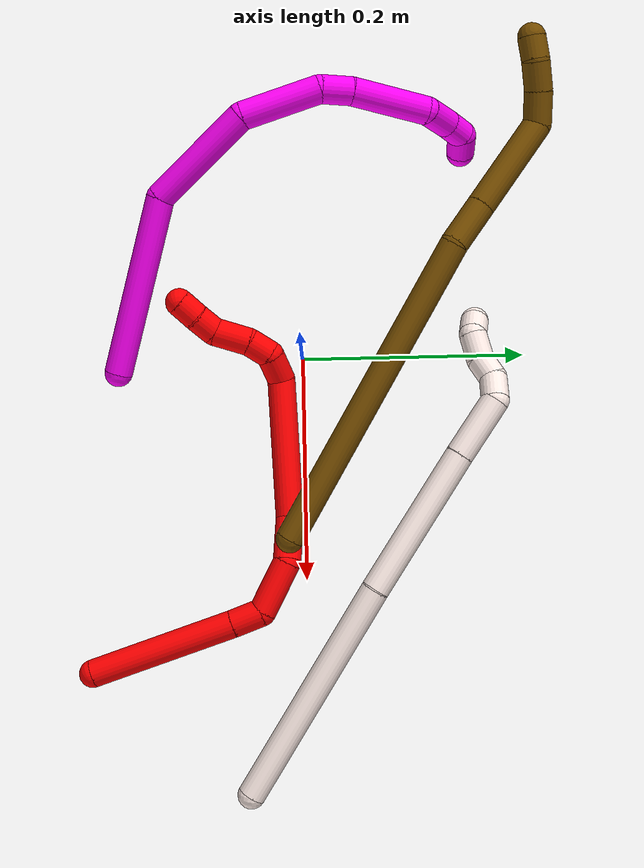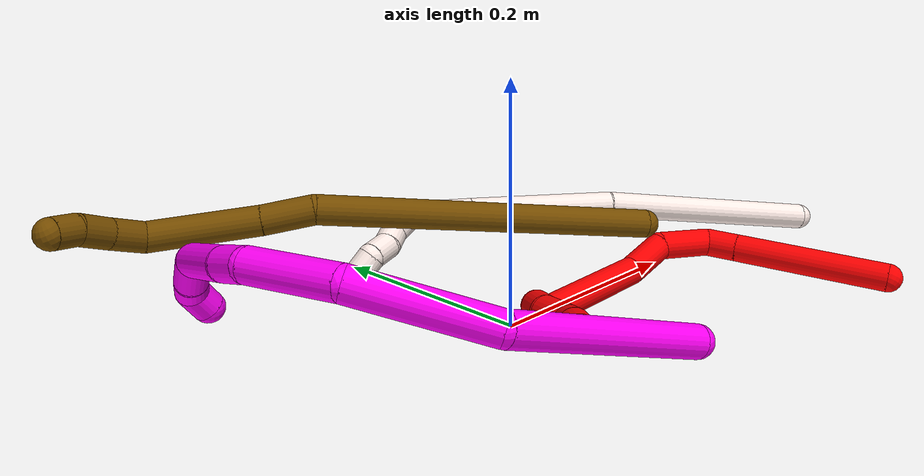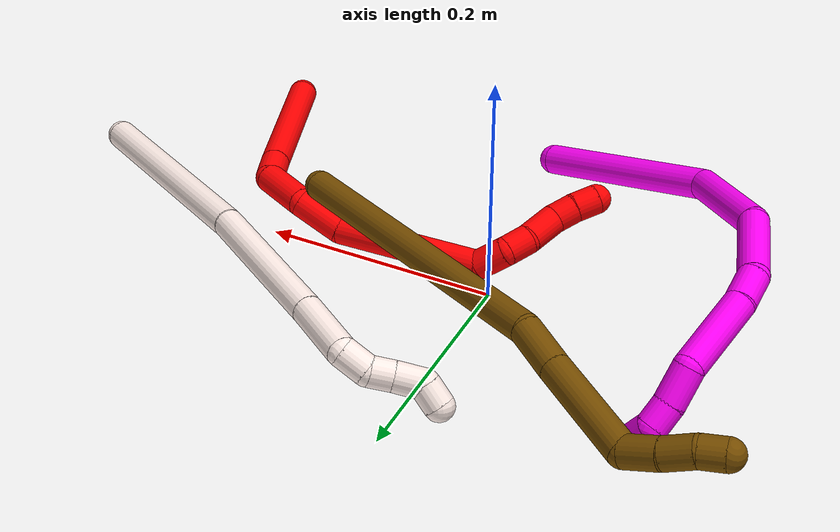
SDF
<sdf version="1.7">
 <world name="default">
  <model name="photoneo_s_sensor">
   <static>1</static>
   <pose>0 0 2 1.57079 1.57079 3.14159</pose>
   <link name="link">
    <inertial><mass>0.1</mass></inertial>
    <sensor name="sensor" type="depth">
     <update_rate>30</update_rate>
     <camera>
      <horizontal_fov>1.22</horizontal_fov>
      <image><width>1920</width><height>1200</height><format>B8G8R8</format></image>
      <clip><near>0.1</near><far>4</far></clip>
      <depth_camera><output>points</output></depth_camera>
     </camera>
     <plugin name="camera_plugin" filename="libgazebo_ros_depth_camera.so">
      <baseline>0.2</baseline>
      <alwaysOn>1</alwaysOn>
      <updateRate>0.0</updateRate>
      <cameraName>camera_ir</cameraName>
      <imageTopicName>/camera/color/image_raw</imageTopicName>
      <cameraInfoTopicName>/camera/color/camera_info</cameraInfoTopicName>
      <depthImageTopicName>/camera/depth/image_raw</depthImageTopicName>
      <depthImageCameraInfoTopicName>/camera/depth/camera_info</depthImageCameraInfoTopicName>
      <pointCloudTopicName>/camera/depth/points</pointCloudTopicName>
      <frameName>fr_optical</frameName>
      <pointCloudCutoff>0.1</pointCloudCutoff>
      <pointCloudCutoffMax>2.0</pointCloudCutoffMax>
      <distortionK1>0</distortionK1>
      <distortionK2>0</distortionK2>
      <distortionK3>0</distortionK3>
      <distortionT1>0</distortionT1>
      <distortionT2>0</distortionT2>
      <CxPrime>0</CxPrime>
      <Cx>0</Cx>
      <Cy>0</Cy>
      <focalLength>0</focalLength>
      <hackBaseline>0</hackBaseline>
     </plugin>
    </sensor>
   </link>
  </model>
  <model name="2">
   <static>0</static>
   <link name="2">
    <collision name="collision-cylinder-e_1_1_4">
     <pose>-0.022279 0.062234 -0.007847 -1.69622 -0.341283 0.385955</pose>
     <geometry><cylinder><radius>0.0125</radius><length>0.133131</length></cylinder></geometry>
     <surface>
      <friction><ode><mu>1.16</mu><mu2>1.16</mu2><slip1>0</slip1><slip2>0</slip2></ode></friction>
      <contact><ode><kp>1e+06</kp><kd>1</kd><max_vel>0</max_vel><min_depth>0.001</min_depth></ode></contact>
     </surface>
    </collision>
    <visual name="visual-cylinder-e_1_1_4">
     <pose>-0.022279 0.062234 -0.007847 -1.69622 -0.341283 0.385955</pose>
     <geometry><cylinder><radius>0.0125</radius><length>0.133131</length></cylinder></geometry>
     <material><ambient>1 0 0 1</ambient></material>
    </visual>
    <collision name="collision-cylinder-e_2_4_5">
     <pose>-0.049681 0.137267 -0.017551 -1.71484 -0.377097 0.434033</pose>
     <geometry><cylinder><radius>0.0125</radius><length>0.027822</length></cylinder></geometry>
     <surface>
      <friction><ode><mu>1.16</mu><mu2>1.16</mu2><slip1>0</slip1><slip2>0</slip2></ode></friction>
      <contact><ode><kp>1e+06</kp><kd>1</kd><max_vel>0</max_vel><min_depth>0.001</min_depth></ode></contact>
     </surface>
    </collision>
    <visual name="visual-cylinder-e_2_4_5">
     <pose>-0.049681 0.137267 -0.017551 -1.71484 -0.377097 0.434033</pose>
     <geometry><cylinder><radius>0.0125</radius><length>0.027822</length></cylinder></geometry>
     <material><ambient>1 0 0 1</ambient></material>
    </visual>
    <collision name="collision-cylinder-e_3_5_6">
     <pose>-0.072963 0.161054 -0.032307 -2.43611 -0.820016 1.7361</pose>
     <geometry><cylinder><radius>0.0125</radius><length>0.049675</length></cylinder></geometry>
     <surface>
      <friction><ode><mu>1.16</mu><mu2>1.16</mu2><slip1>0</slip1><slip2>0</slip2></ode></friction>
      <contact><ode><kp>1e+06</kp><kd>1</kd><max_vel>0</max_vel><min_depth>0.001</min_depth></ode></contact>
     </surface>
    </collision>
    <visual name="visual-cylinder-e_3_5_6">
     <pose>-0.072963 0.161054 -0.032307 -2.43611 -0.820016 1.7361</pose>
     <geometry><cylinder><radius>0.0125</radius><length>0.049675</length></cylinder></geometry>
     <material><ambient>1 0 0 1</ambient></material>
    </visual>
    <collision name="collision-cylinder-e_4_6_7">
     <pose>-0.101599 0.173568 -0.063053 -3.05622 -0.52922 2.8289</pose>
     <geometry><cylinder><radius>0.0125</radius><length>0.041501</length></cylinder></geometry>
     <surface>
      <friction><ode><mu>1.16</mu><mu2>1.16</mu2><slip1>0</slip1><slip2>0</slip2></ode></friction>
      <contact><ode><kp>1e+06</kp><kd>1</kd><max_vel>0</max_vel><min_depth>0.001</min_depth></ode></contact>
     </surface>
    </collision>
    <visual name="visual-cylinder-e_4_6_7">
     <pose>-0.101599 0.173568 -0.063053 -3.05622 -0.52922 2.8289</pose>
     <geometry><cylinder><radius>0.0125</radius><length>0.041501</length></cylinder></geometry>
     <material><ambient>1 0 0 1</ambient></material>
    </visual>
    <collision name="collision-cylinder-e_5_7_8">
     <pose>-0.160025 0.171353 -0.121111 3.0488 -0.870828 -2.94265</pose>
     <geometry><cylinder><radius>0.0125</radius><length>0.125382</length></cylinder></geometry>
     <surface>
      <friction><ode><mu>1.16</mu><mu2>1.16</mu2><slip1>0</slip1><slip2>0</slip2></ode></friction>
      <contact><ode><kp>1e+06</kp><kd>1</kd><max_vel>0</max_vel><min_depth>0.001</min_depth></ode></contact>
     </surface>
    </collision>
    <visual name="visual-cylinder-e_5_7_8">
     <pose>-0.160025 0.171353 -0.121111 3.0488 -0.870828 -2.94265</pose>
     <geometry><cylinder><radius>0.0125</radius><length>0.125382</length></cylinder></geometry>
     <material><ambient>1 0 0 1</ambient></material>
    </visual>
    <collision name="collision-cylinder-e_6_8_9">
     <pose>-0.220574 0.162343 -0.162456 1.78274 -1.16662 -1.37006</pose>
     <geometry><cylinder><radius>0.0125</radius><length>0.027405</length></cylinder></geometry>
     <surface>
      <friction><ode><mu>1.16</mu><mu2>1.16</mu2><slip1>0</slip1><slip2>0</slip2></ode></friction>
      <contact><ode><kp>1e+06</kp><kd>1</kd><max_vel>0</max_vel><min_depth>0.001</min_depth></ode></contact>
     </surface>
    </collision>
    <visual name="visual-cylinder-e_6_8_9">
     <pose>-0.220574 0.162343 -0.162456 1.78274 -1.16662 -1.37006</pose>
     <geometry><cylinder><radius>0.0125</radius><length>0.027405</length></cylinder></geometry>
     <material><ambient>1 0 0 1</ambient></material>
    </visual>
    <collision name="collision-cylinder-e_7_9_10">
     <pose>-0.238461 0.14765 -0.165975 1.8187 -0.498218 -0.631728</pose>
     <geometry><cylinder><radius>0.0125</radius><length>0.022136</length></cylinder></geometry>
     <surface>
      <friction><ode><mu>1.16</mu><mu2>1.16</mu2><slip1>0</slip1><slip2>0</slip2></ode></friction>
      <contact><ode><kp>1e+06</kp><kd>1</kd><max_vel>0</max_vel><min_depth>0.001</min_depth></ode></contact>
     </surface>
    </collision>
    <visual name="visual-cylinder-e_7_9_10">
     <pose>-0.238461 0.14765 -0.165975 1.8187 -0.498218 -0.631728</pose>
     <geometry><cylinder><radius>0.0125</radius><length>0.022136</length></cylinder></geometry>
     <material><ambient>1 0 0 1</ambient></material>
    </visual>
    <collision name="collision-cylinder-e_8_10_11">
     <pose>-0.247705 0.122737 -0.170501 1.70813 -0.247727 -0.283861</pose>
     <geometry><cylinder><radius>0.0125</radius><length>0.032254</length></cylinder></geometry>
     <surface>
      <friction><ode><mu>1.16</mu><mu2>1.16</mu2><slip1>0</slip1><slip2>0</slip2></ode></friction>
      <contact><ode><kp>1e+06</kp><kd>1</kd><max_vel>0</max_vel><min_depth>0.001</min_depth></ode></contact>
     </surface>
    </collision>
    <visual name="visual-cylinder-e_8_10_11">
     <pose>-0.247705 0.122737 -0.170501 1.70813 -0.247727 -0.283861</pose>
     <geometry><cylinder><radius>0.0125</radius><length>0.032254</length></cylinder></geometry>
     <material><ambient>1 0 0 1</ambient></material>
    </visual>
    <collision name="collision-cylinder-e_9_11_12">
     <pose>-0.257837 0.099521 -0.174525 1.80981 -0.660285 -0.822657</pose>
     <geometry><cylinder><radius>0.0125</radius><length>0.020144</length></cylinder></geometry>
     <surface>
      <friction><ode><mu>1.16</mu><mu2>1.16</mu2><slip1>0</slip1><slip2>0</slip2></ode></friction>
      <contact><ode><kp>1e+06</kp><kd>1</kd><max_vel>0</max_vel><min_depth>0.001</min_depth></ode></contact>
     </surface>
    </collision>
    <visual name="visual-cylinder-e_9_11_12">
     <pose>-0.257837 0.099521 -0.174525 1.80981 -0.660285 -0.822657</pose>
     <geometry><cylinder><radius>0.0125</radius><length>0.020144</length></cylinder></geometry>
     <material><ambient>1 0 0 1</ambient></material>
    </visual>
    <collision name="collision-cylinder-e_10_12_2">
     <pose>-0.270024 0.084045 -0.179482 1.94858 -0.624761 -0.887903</pose>
     <geometry><cylinder><radius>0.0125</radius><length>0.02055</length></cylinder></geometry>
     <surface>
      <friction><ode><mu>1.16</mu><mu2>1.16</mu2><slip1>0</slip1><slip2>0</slip2></ode></friction>
      <contact><ode><kp>1e+06</kp><kd>1</kd><max_vel>0</max_vel><min_depth>0.001</min_depth></ode></contact>
     </surface>
    </collision>
    <visual name="visual-cylinder-e_10_12_2">
     <pose>-0.270024 0.084045 -0.179482 1.94858 -0.624761 -0.887903</pose>
     <geometry><cylinder><radius>0.0125</radius><length>0.02055</length></cylinder></geometry>
     <material><ambient>1 0 0 1</ambient></material>
    </visual>
    <collision name="collision-sphere-2">
     <pose>-0.276034 0.076299 -0.182556 0 -0 0</pose>
     <geometry><sphere><radius>0.0125</radius></sphere></geometry>
     <surface>
      <friction><ode><mu>1.16</mu><mu2>1.16</mu2><slip1>0</slip1><slip2>0</slip2></ode></friction>
      <contact><ode><kp>1e+06</kp><kd>1</kd><max_vel>0</max_vel><min_depth>0.001</min_depth></ode></contact>
     </surface>
    </collision>
    <visual name="visual-sphere-2">
     <pose>-0.276034 0.076299 -0.182556 0 -0 0</pose>
     <geometry><sphere><radius>0.0125</radius></sphere></geometry>
     <material><ambient>1 0 0 1</ambient></material>
    </visual>
    <collision name="collision-sphere-12">
     <pose>-0.264014 0.091792 -0.176408 0 -0 0</pose>
     <geometry><sphere><radius>0.0125</radius></sphere></geometry>
     <surface>
      <friction><ode><mu>1.16</mu><mu2>1.16</mu2><slip1>0</slip1><slip2>0</slip2></ode></friction>
      <contact><ode><kp>1e+06</kp><kd>1</kd><max_vel>0</max_vel><min_depth>0.001</min_depth></ode></contact>
     </surface>
    </collision>
    <visual name="visual-sphere-12">
     <pose>-0.264014 0.091792 -0.176408 0 -0 0</pose>
     <geometry><sphere><radius>0.0125</radius></sphere></geometry>
     <material><ambient>1 0 0 1</ambient></material>
    </visual>
    <collision name="collision-sphere-11">
     <pose>-0.251659 0.10725 -0.172642 0 -0 0</pose>
     <geometry><sphere><radius>0.0125</radius></sphere></geometry>
     <surface>
      <friction><ode><mu>1.16</mu><mu2>1.16</mu2><slip1>0</slip1><slip2>0</slip2></ode></friction>
      <contact><ode><kp>1e+06</kp><kd>1</kd><max_vel>0</max_vel><min_depth>0.001</min_depth></ode></contact>
     </surface>
    </collision>
    <visual name="visual-sphere-11">
     <pose>-0.251659 0.10725 -0.172642 0 -0 0</pose>
     <geometry><sphere><radius>0.0125</radius></sphere></geometry>
     <material><ambient>1 0 0 1</ambient></material>
    </visual>
    <collision name="collision-sphere-10">
     <pose>-0.24375 0.138225 -0.168361 0 -0 0</pose>
     <geometry><sphere><radius>0.0125</radius></sphere></geometry>
     <surface>
      <friction><ode><mu>1.16</mu><mu2>1.16</mu2><slip1>0</slip1><slip2>0</slip2></ode></friction>
      <contact><ode><kp>1e+06</kp><kd>1</kd><max_vel>0</max_vel><min_depth>0.001</min_depth></ode></contact>
     </surface>
    </collision>
    <visual name="visual-sphere-10">
     <pose>-0.24375 0.138225 -0.168361 0 -0 0</pose>
     <geometry><sphere><radius>0.0125</radius></sphere></geometry>
     <material><ambient>1 0 0 1</ambient></material>
    </visual>
    <collision name="collision-sphere-9">
     <pose>-0.233172 0.157075 -0.163589 0 -0 0</pose>
     <geometry><sphere><radius>0.0125</radius></sphere></geometry>
     <surface>
      <friction><ode><mu>1.16</mu><mu2>1.16</mu2><slip1>0</slip1><slip2>0</slip2></ode></friction>
      <contact><ode><kp>1e+06</kp><kd>1</kd><max_vel>0</max_vel><min_depth>0.001</min_depth></ode></contact>
     </surface>
    </collision>
    <visual name="visual-sphere-9">
     <pose>-0.233172 0.157075 -0.163589 0 -0 0</pose>
     <geometry><sphere><radius>0.0125</radius></sphere></geometry>
     <material><ambient>1 0 0 1</ambient></material>
    </visual>
    <collision name="collision-sphere-4">
     <pose>-0.044559 0.124467 -0.015694 0 -0 0</pose>
     <geometry><sphere><radius>0.0125</radius></sphere></geometry>
     <surface>
      <friction><ode><mu>1.16</mu><mu2>1.16</mu2><slip1>0</slip1><slip2>0</slip2></ode></friction>
      <contact><ode><kp>1e+06</kp><kd>1</kd><max_vel>0</max_vel><min_depth>0.001</min_depth></ode></contact>
     </surface>
    </collision>
    <visual name="visual-sphere-4">
     <pose>-0.044559 0.124467 -0.015694 0 -0 0</pose>
     <geometry><sphere><radius>0.0125</radius></sphere></geometry>
     <material><ambient>1 0 0 1</ambient></material>
    </visual>
    <collision name="collision-sphere-1">
     <geometry><sphere><radius>0.0125</radius></sphere></geometry>
     <surface>
      <friction><ode><mu>1.16</mu><mu2>1.16</mu2><slip1>0</slip1><slip2>0</slip2></ode></friction>
      <contact><ode><kp>1e+06</kp><kd>1</kd><max_vel>0</max_vel><min_depth>0.001</min_depth></ode></contact>
     </surface>
    </collision>
    <visual name="visual-sphere-1">
     <geometry><sphere><radius>0.0125</radius></sphere></geometry>
     <material><ambient>1 0 0 1</ambient></material>
    </visual>
    <collision name="collision-sphere-8">
     <pose>-0.207975 0.167611 -0.161322 0 -0 0</pose>
     <geometry><sphere><radius>0.0125</radius></sphere></geometry>
     <surface>
      <friction><ode><mu>1.16</mu><mu2>1.16</mu2><slip1>0</slip1><slip2>0</slip2></ode></friction>
      <contact><ode><kp>1e+06</kp><kd>1</kd><max_vel>0</max_vel><min_depth>0.001</min_depth></ode></contact>
     </surface>
    </collision>
    <visual name="visual-sphere-8">
     <pose>-0.207975 0.167611 -0.161322 0 -0 0</pose>
     <geometry><sphere><radius>0.0125</radius></sphere></geometry>
     <material><ambient>1 0 0 1</ambient></material>
    </visual>
    <collision name="collision-sphere-5">
     <pose>-0.054803 0.150067 -0.019407 0 -0 0</pose>
     <geometry><sphere><radius>0.0125</radius></sphere></geometry>
     <surface>
      <friction><ode><mu>1.16</mu><mu2>1.16</mu2><slip1>0</slip1><slip2>0</slip2></ode></friction>
      <contact><ode><kp>1e+06</kp><kd>1</kd><max_vel>0</max_vel><min_depth>0.001</min_depth></ode></contact>
     </surface>
    </collision>
    <visual name="visual-sphere-5">
     <pose>-0.054803 0.150067 -0.019407 0 -0 0</pose>
     <geometry><sphere><radius>0.0125</radius></sphere></geometry>
     <material><ambient>1 0 0 1</ambient></material>
    </visual>
    <collision name="collision-sphere-6">
     <pose>-0.091123 0.17204 -0.045206 0 -0 0</pose>
     <geometry><sphere><radius>0.0125</radius></sphere></geometry>
     <surface>
      <friction><ode><mu>1.16</mu><mu2>1.16</mu2><slip1>0</slip1><slip2>0</slip2></ode></friction>
      <contact><ode><kp>1e+06</kp><kd>1</kd><max_vel>0</max_vel><min_depth>0.001</min_depth></ode></contact>
     </surface>
    </collision>
    <visual name="visual-sphere-6">
     <pose>-0.091123 0.17204 -0.045206 0 -0 0</pose>
     <geometry><sphere><radius>0.0125</radius></sphere></geometry>
     <material><ambient>1 0 0 1</ambient></material>
    </visual>
    <collision name="collision-sphere-7">
     <pose>-0.112075 0.175095 -0.080899 0 -0 0</pose>
     <geometry><sphere><radius>0.0125</radius></sphere></geometry>
     <surface>
      <friction><ode><mu>1.16</mu><mu2>1.16</mu2><slip1>0</slip1><slip2>0</slip2></ode></friction>
      <contact><ode><kp>1e+06</kp><kd>1</kd><max_vel>0</max_vel><min_depth>0.001</min_depth></ode></contact>
     </surface>
    </collision>
    <visual name="visual-sphere-7">
     <pose>-0.112075 0.175095 -0.080899 0 -0 0</pose>
     <geometry><sphere><radius>0.0125</radius></sphere></geometry>
     <material><ambient>1 0 0 1</ambient></material>
    </visual>
    <inertial>
     <pose>-0.124618 0.128401 -0.083538 0 -0 0</pose>
     <mass>0.5</mass>
     <inertia>
      <ixx>0.000106</ixx>
      <ixy>0</ixy>
      <ixz>0</ixz>
      <iyy>0.000249</iyy>
      <iyz>0</iyz>
      <izz>2.4e-05</izz>
     </inertia>
    </inertial>
   </link>
   <pose>0.279298 -0.191994 0.012345 -0.077046 0.692833 -0.066193</pose>
  </model>
  <model name="10">
   <static>0</static>
   <link name="10">
    <collision name="collision-cylinder-e_1_1_4">
     <pose>-0.024978 0.008899 -0.075801 -3.02473 -0.316291 2.43846</pose>
     <geometry><cylinder><radius>0.0125</radius><length>0.16061</length></cylinder></geometry>
     <surface>
      <friction><ode><mu>1.16</mu><mu2>1.16</mu2><slip1>0</slip1><slip2>0</slip2></ode></friction>
      <contact><ode><kp>1e+06</kp><kd>1</kd><max_vel>0</max_vel><min_depth>0.001</min_depth></ode></contact>
     </surface>
    </collision>
    <visual name="visual-cylinder-e_1_1_4">
     <pose>-0.024978 0.008899 -0.075801 -3.02473 -0.316291 2.43846</pose>
     <geometry><cylinder><radius>0.0125</radius><length>0.16061</length></cylinder></geometry>
     <material><ambient>1 0 0.964706 1</ambient></material>
    </visual>
    <collision name="collision-cylinder-e_2_4_5">
     <pose>-0.063276 0.048474 -0.188982 -2.45437 -0.268766 0.722543</pose>
     <geometry><cylinder><radius>0.0125</radius><length>0.100314</length></cylinder></geometry>
     <surface>
      <friction><ode><mu>1.16</mu><mu2>1.16</mu2><slip1>0</slip1><slip2>0</slip2></ode></friction>
      <contact><ode><kp>1e+06</kp><kd>1</kd><max_vel>0</max_vel><min_depth>0.001</min_depth></ode></contact>
     </surface>
    </collision>
    <visual name="visual-cylinder-e_2_4_5">
     <pose>-0.063276 0.048474 -0.188982 -2.45437 -0.268766 0.722543</pose>
     <geometry><cylinder><radius>0.0125</radius><length>0.100314</length></cylinder></geometry>
     <material><ambient>1 0 0.964706 1</ambient></material>
    </visual>
    <collision name="collision-cylinder-e_3_5_6">
     <pose>-0.075291 0.110053 -0.243764 -2.08366 0.036727 -0.062819</pose>
     <geometry><cylinder><radius>0.0125</radius><length>0.070979</length></cylinder></geometry>
     <surface>
      <friction><ode><mu>1.16</mu><mu2>1.16</mu2><slip1>0</slip1><slip2>0</slip2></ode></friction>
      <contact><ode><kp>1e+06</kp><kd>1</kd><max_vel>0</max_vel><min_depth>0.001</min_depth></ode></contact>
     </surface>
    </collision>
    <visual name="visual-cylinder-e_3_5_6">
     <pose>-0.075291 0.110053 -0.243764 -2.08366 0.036727 -0.062819</pose>
     <geometry><cylinder><radius>0.0125</radius><length>0.070979</length></cylinder></geometry>
     <material><ambient>1 0 0.964706 1</ambient></material>
    </visual>
    <collision name="collision-cylinder-e_4_6_7">
     <pose>-0.069879 0.154172 -0.263604 -1.75319 0.296726 -0.355313</pose>
     <geometry><cylinder><radius>0.0125</radius><length>0.028107</length></cylinder></geometry>
     <surface>
      <friction><ode><mu>1.16</mu><mu2>1.16</mu2><slip1>0</slip1><slip2>0</slip2></ode></friction>
      <contact><ode><kp>1e+06</kp><kd>1</kd><max_vel>0</max_vel><min_depth>0.001</min_depth></ode></contact>
     </surface>
    </collision>
    <visual name="visual-cylinder-e_4_6_7">
     <pose>-0.069879 0.154172 -0.263604 -1.75319 0.296726 -0.355313</pose>
     <geometry><cylinder><radius>0.0125</radius><length>0.028107</length></cylinder></geometry>
     <material><ambient>1 0 0.964706 1</ambient></material>
    </visual>
    <collision name="collision-cylinder-e_5_7_8">
     <pose>-0.054421 0.200101 -0.266022 -1.57021 0.333924 -0.333731</pose>
     <geometry><cylinder><radius>0.0125</radius><length>0.06925</length></cylinder></geometry>
     <surface>
      <friction><ode><mu>1.16</mu><mu2>1.16</mu2><slip1>0</slip1><slip2>0</slip2></ode></friction>
      <contact><ode><kp>1e+06</kp><kd>1</kd><max_vel>0</max_vel><min_depth>0.001</min_depth></ode></contact>
     </surface>
    </collision>
    <visual name="visual-cylinder-e_5_7_8">
     <pose>-0.054421 0.200101 -0.266022 -1.57021 0.333924 -0.333731</pose>
     <geometry><cylinder><radius>0.0125</radius><length>0.06925</length></cylinder></geometry>
     <material><ambient>1 0 0.964706 1</ambient></material>
    </visual>
    <collision name="collision-cylinder-e_6_8_9">
     <pose>-0.031048 0.241816 -0.265228 -1.48499 0.926352 -0.859465</pose>
     <geometry><cylinder><radius>0.0125</radius><length>0.030084</length></cylinder></geometry>
     <surface>
      <friction><ode><mu>1.16</mu><mu2>1.16</mu2><slip1>0</slip1><slip2>0</slip2></ode></friction>
      <contact><ode><kp>1e+06</kp><kd>1</kd><max_vel>0</max_vel><min_depth>0.001</min_depth></ode></contact>
     </surface>
    </collision>
    <visual name="visual-cylinder-e_6_8_9">
     <pose>-0.031048 0.241816 -0.265228 -1.48499 0.926352 -0.859465</pose>
     <geometry><cylinder><radius>0.0125</radius><length>0.030084</length></cylinder></geometry>
     <material><ambient>1 0 0.964706 1</ambient></material>
    </visual>
    <collision name="collision-cylinder-e_7_9_10">
     <pose>-0.011606 0.257715 -0.26269 -1.32037 0.806031 -0.639334</pose>
     <geometry><cylinder><radius>0.0125</radius><length>0.020559</length></cylinder></geometry>
     <surface>
      <friction><ode><mu>1.16</mu><mu2>1.16</mu2><slip1>0</slip1><slip2>0</slip2></ode></friction>
      <contact><ode><kp>1e+06</kp><kd>1</kd><max_vel>0</max_vel><min_depth>0.001</min_depth></ode></contact>
     </surface>
    </collision>
    <visual name="visual-cylinder-e_7_9_10">
     <pose>-0.011606 0.257715 -0.26269 -1.32037 0.806031 -0.639334</pose>
     <geometry><cylinder><radius>0.0125</radius><length>0.020559</length></cylinder></geometry>
     <material><ambient>1 0 0.964706 1</ambient></material>
    </visual>
    <collision name="collision-cylinder-e_8_10_2">
     <pose>0.004134 0.264848 -0.2553 -0.042296 0.975912 -0.022452</pose>
     <geometry><cylinder><radius>0.0125</radius><length>0.020098</length></cylinder></geometry>
     <surface>
      <friction><ode><mu>1.16</mu><mu2>1.16</mu2><slip1>0</slip1><slip2>0</slip2></ode></friction>
      <contact><ode><kp>1e+06</kp><kd>1</kd><max_vel>0</max_vel><min_depth>0.001</min_depth></ode></contact>
     </surface>
    </collision>
    <visual name="visual-cylinder-e_8_10_2">
     <pose>0.004134 0.264848 -0.2553 -0.042296 0.975912 -0.022452</pose>
     <geometry><cylinder><radius>0.0125</radius><length>0.020098</length></cylinder></geometry>
     <material><ambient>1 0 0.964706 1</ambient></material>
    </visual>
    <collision name="collision-sphere-2">
     <pose>0.012457 0.265086 -0.249673 0 -0 0</pose>
     <geometry><sphere><radius>0.0125</radius></sphere></geometry>
     <surface>
      <friction><ode><mu>1.16</mu><mu2>1.16</mu2><slip1>0</slip1><slip2>0</slip2></ode></friction>
      <contact><ode><kp>1e+06</kp><kd>1</kd><max_vel>0</max_vel><min_depth>0.001</min_depth></ode></contact>
     </surface>
    </collision>
    <visual name="visual-sphere-2">
     <pose>0.012457 0.265086 -0.249673 0 -0 0</pose>
     <geometry><sphere><radius>0.0125</radius></sphere></geometry>
     <material><ambient>1 0 0.964706 1</ambient></material>
    </visual>
    <collision name="collision-sphere-10">
     <pose>-0.004189 0.26461 -0.260926 0 -0 0</pose>
     <geometry><sphere><radius>0.0125</radius></sphere></geometry>
     <surface>
      <friction><ode><mu>1.16</mu><mu2>1.16</mu2><slip1>0</slip1><slip2>0</slip2></ode></friction>
      <contact><ode><kp>1e+06</kp><kd>1</kd><max_vel>0</max_vel><min_depth>0.001</min_depth></ode></contact>
     </surface>
    </collision>
    <visual name="visual-sphere-10">
     <pose>-0.004189 0.26461 -0.260926 0 -0 0</pose>
     <geometry><sphere><radius>0.0125</radius></sphere></geometry>
     <material><ambient>1 0 0.964706 1</ambient></material>
    </visual>
    <collision name="collision-sphere-9">
     <pose>-0.019023 0.25082 -0.264454 0 -0 0</pose>
     <geometry><sphere><radius>0.0125</radius></sphere></geometry>
     <surface>
      <friction><ode><mu>1.16</mu><mu2>1.16</mu2><slip1>0</slip1><slip2>0</slip2></ode></friction>
      <contact><ode><kp>1e+06</kp><kd>1</kd><max_vel>0</max_vel><min_depth>0.001</min_depth></ode></contact>
     </surface>
    </collision>
    <visual name="visual-sphere-9">
     <pose>-0.019023 0.25082 -0.264454 0 -0 0</pose>
     <geometry><sphere><radius>0.0125</radius></sphere></geometry>
     <material><ambient>1 0 0.964706 1</ambient></material>
    </visual>
    <collision name="collision-sphere-4">
     <pose>-0.049957 0.017797 -0.151602 0 -0 0</pose>
     <geometry><sphere><radius>0.0125</radius></sphere></geometry>
     <surface>
      <friction><ode><mu>1.16</mu><mu2>1.16</mu2><slip1>0</slip1><slip2>0</slip2></ode></friction>
      <contact><ode><kp>1e+06</kp><kd>1</kd><max_vel>0</max_vel><min_depth>0.001</min_depth></ode></contact>
     </surface>
    </collision>
    <visual name="visual-sphere-4">
     <pose>-0.049957 0.017797 -0.151602 0 -0 0</pose>
     <geometry><sphere><radius>0.0125</radius></sphere></geometry>
     <material><ambient>1 0 0.964706 1</ambient></material>
    </visual>
    <collision name="collision-sphere-1">
     <geometry><sphere><radius>0.0125</radius></sphere></geometry>
     <surface>
      <friction><ode><mu>1.16</mu><mu2>1.16</mu2><slip1>0</slip1><slip2>0</slip2></ode></friction>
      <contact><ode><kp>1e+06</kp><kd>1</kd><max_vel>0</max_vel><min_depth>0.001</min_depth></ode></contact>
     </surface>
    </collision>
    <visual name="visual-sphere-1">
     <geometry><sphere><radius>0.0125</radius></sphere></geometry>
     <material><ambient>1 0 0.964706 1</ambient></material>
    </visual>
    <collision name="collision-sphere-8">
     <pose>-0.043073 0.232813 -0.266003 0 -0 0</pose>
     <geometry><sphere><radius>0.0125</radius></sphere></geometry>
     <surface>
      <friction><ode><mu>1.16</mu><mu2>1.16</mu2><slip1>0</slip1><slip2>0</slip2></ode></friction>
      <contact><ode><kp>1e+06</kp><kd>1</kd><max_vel>0</max_vel><min_depth>0.001</min_depth></ode></contact>
     </surface>
    </collision>
    <visual name="visual-sphere-8">
     <pose>-0.043073 0.232813 -0.266003 0 -0 0</pose>
     <geometry><sphere><radius>0.0125</radius></sphere></geometry>
     <material><ambient>1 0 0.964706 1</ambient></material>
    </visual>
    <collision name="collision-sphere-5">
     <pose>-0.076594 0.079151 -0.226362 0 -0 0</pose>
     <geometry><sphere><radius>0.0125</radius></sphere></geometry>
     <surface>
      <friction><ode><mu>1.16</mu><mu2>1.16</mu2><slip1>0</slip1><slip2>0</slip2></ode></friction>
      <contact><ode><kp>1e+06</kp><kd>1</kd><max_vel>0</max_vel><min_depth>0.001</min_depth></ode></contact>
     </surface>
    </collision>
    <visual name="visual-sphere-5">
     <pose>-0.076594 0.079151 -0.226362 0 -0 0</pose>
     <geometry><sphere><radius>0.0125</radius></sphere></geometry>
     <material><ambient>1 0 0.964706 1</ambient></material>
    </visual>
    <collision name="collision-sphere-6">
     <pose>-0.073988 0.140955 -0.261166 0 -0 0</pose>
     <geometry><sphere><radius>0.0125</radius></sphere></geometry>
     <surface>
      <friction><ode><mu>1.16</mu><mu2>1.16</mu2><slip1>0</slip1><slip2>0</slip2></ode></friction>
      <contact><ode><kp>1e+06</kp><kd>1</kd><max_vel>0</max_vel><min_depth>0.001</min_depth></ode></contact>
     </surface>
    </collision>
    <visual name="visual-sphere-6">
     <pose>-0.073988 0.140955 -0.261166 0 -0 0</pose>
     <geometry><sphere><radius>0.0125</radius></sphere></geometry>
     <material><ambient>1 0 0.964706 1</ambient></material>
    </visual>
    <collision name="collision-sphere-7">
     <pose>-0.06577 0.167388 -0.266041 0 -0 0</pose>
     <geometry><sphere><radius>0.0125</radius></sphere></geometry>
     <surface>
      <friction><ode><mu>1.16</mu><mu2>1.16</mu2><slip1>0</slip1><slip2>0</slip2></ode></friction>
      <contact><ode><kp>1e+06</kp><kd>1</kd><max_vel>0</max_vel><min_depth>0.001</min_depth></ode></contact>
     </surface>
    </collision>
    <visual name="visual-sphere-7">
     <pose>-0.06577 0.167388 -0.266041 0 -0 0</pose>
     <geometry><sphere><radius>0.0125</radius></sphere></geometry>
     <material><ambient>1 0 0.964706 1</ambient></material>
    </visual>
    <inertial>
     <pose>-0.045051 0.100379 -0.185552 0 -0 0</pose>
     <mass>0.5</mass>
     <inertia><ixx>0.000133</ixx><ixy>0</ixy><ixz>0</ixz><iyy>0.000503</iyy><iyz>0</iyz><izz>-6e-05</izz></inertia>
    </inertial>
   </link>
   <pose>0.012401 -0.163783 0.033312 1.07609 1.48124 0.881179</pose>
  </model>
  <model name="11">
   <static>0</static>
   <link name="11">
    <collision name="collision-cylinder-e_1_1_4">
     <pose>-0.097563 0.026429 -0.035568 -2.50255 -1.14447 2.19256</pose>
     <geometry><cylinder><radius>0.0125</radius><length>0.214308</length></cylinder></geometry>
     <surface>
      <friction><ode><mu>1.16</mu><mu2>1.16</mu2><slip1>0</slip1><slip2>0</slip2></ode></friction>
      <contact><ode><kp>1e+06</kp><kd>1</kd><max_vel>0</max_vel><min_depth>0.001</min_depth></ode></contact>
     </surface>
    </collision>
    <visual name="visual-cylinder-e_1_1_4">
     <pose>-0.097563 0.026429 -0.035568 -2.50255 -1.14447 2.19256</pose>
     <geometry><cylinder><radius>0.0125</radius><length>0.214308</length></cylinder></geometry>
     <material><ambient>1 0.933333 0.909804 1</ambient></material>
    </visual>
    <collision name="collision-cylinder-e_2_4_5">
     <pose>-0.259981 0.06202 -0.09452 -2.76819 -1.20132 2.60351</pose>
     <geometry><cylinder><radius>0.0125</radius><length>0.139097</length></cylinder></geometry>
     <surface>
      <friction><ode><mu>1.16</mu><mu2>1.16</mu2><slip1>0</slip1><slip2>0</slip2></ode></friction>
      <contact><ode><kp>1e+06</kp><kd>1</kd><max_vel>0</max_vel><min_depth>0.001</min_depth></ode></contact>
     </surface>
    </collision>
    <visual name="visual-cylinder-e_2_4_5">
     <pose>-0.259981 0.06202 -0.09452 -2.76819 -1.20132 2.60351</pose>
     <geometry><cylinder><radius>0.0125</radius><length>0.139097</length></cylinder></geometry>
     <material><ambient>1 0.933333 0.909804 1</ambient></material>
    </visual>
    <collision name="collision-cylinder-e_3_5_6">
     <pose>-0.351716 0.074184 -0.128073 -2.85446 -1.19513 2.72299</pose>
     <geometry><cylinder><radius>0.0125</radius><length>0.057791</length></cylinder></geometry>
     <surface>
      <friction><ode><mu>1.16</mu><mu2>1.16</mu2><slip1>0</slip1><slip2>0</slip2></ode></friction>
      <contact><ode><kp>1e+06</kp><kd>1</kd><max_vel>0</max_vel><min_depth>0.001</min_depth></ode></contact>
     </surface>
    </collision>
    <visual name="visual-cylinder-e_3_5_6">
     <pose>-0.351716 0.074184 -0.128073 -2.85446 -1.19513 2.72299</pose>
     <geometry><cylinder><radius>0.0125</radius><length>0.057791</length></cylinder></geometry>
     <material><ambient>1 0.933333 0.909804 1</ambient></material>
    </visual>
    <collision name="collision-cylinder-e_4_6_7">
     <pose>-0.389561 0.073954 -0.134683 0.737577 -1.15762 -0.494748</pose>
     <geometry><cylinder><radius>0.0125</radius><length>0.023943</length></cylinder></geometry>
     <surface>
      <friction><ode><mu>1.16</mu><mu2>1.16</mu2><slip1>0</slip1><slip2>0</slip2></ode></friction>
      <contact><ode><kp>1e+06</kp><kd>1</kd><max_vel>0</max_vel><min_depth>0.001</min_depth></ode></contact>
     </surface>
    </collision>
    <visual name="visual-cylinder-e_4_6_7">
     <pose>-0.389561 0.073954 -0.134683 0.737577 -1.15762 -0.494748</pose>
     <geometry><cylinder><radius>0.0125</radius><length>0.023943</length></cylinder></geometry>
     <material><ambient>1 0.933333 0.909804 1</ambient></material>
    </visual>
    <collision name="collision-cylinder-e_5_7_8">
     <pose>-0.407704 0.07004 -0.123784 0.092586 -0.772079 -0.037653</pose>
     <geometry><cylinder><radius>0.0125</radius><length>0.020581</length></cylinder></geometry>
     <surface>
      <friction><ode><mu>1.16</mu><mu2>1.16</mu2><slip1>0</slip1><slip2>0</slip2></ode></friction>
      <contact><ode><kp>1e+06</kp><kd>1</kd><max_vel>0</max_vel><min_depth>0.001</min_depth></ode></contact>
     </surface>
    </collision>
    <visual name="visual-cylinder-e_5_7_8">
     <pose>-0.407704 0.07004 -0.123784 0.092586 -0.772079 -0.037653</pose>
     <geometry><cylinder><radius>0.0125</radius><length>0.020581</length></cylinder></geometry>
     <material><ambient>1 0.933333 0.909804 1</ambient></material>
    </visual>
    <collision name="collision-cylinder-e_6_8_9">
     <pose>-0.425447 0.070576 -0.110639 -0.206909 -1.05921 0.121406</pose>
     <geometry><cylinder><radius>0.0125</radius><length>0.024229</length></cylinder></geometry>
     <surface>
      <friction><ode><mu>1.16</mu><mu2>1.16</mu2><slip1>0</slip1><slip2>0</slip2></ode></friction>
      <contact><ode><kp>1e+06</kp><kd>1</kd><max_vel>0</max_vel><min_depth>0.001</min_depth></ode></contact>
     </surface>
    </collision>
    <visual name="visual-cylinder-e_6_8_9">
     <pose>-0.425447 0.070576 -0.110639 -0.206909 -1.05921 0.121406</pose>
     <geometry><cylinder><radius>0.0125</radius><length>0.024229</length></cylinder></geometry>
     <material><ambient>1 0.933333 0.909804 1</ambient></material>
    </visual>
    <collision name="collision-cylinder-e_7_9_2">
     <pose>-0.44426 0.066279 -0.103413 1.31861 -0.966601 -0.772579</pose>
     <geometry><cylinder><radius>0.0125</radius><length>0.020051</length></cylinder></geometry>
     <surface>
      <friction><ode><mu>1.16</mu><mu2>1.16</mu2><slip1>0</slip1><slip2>0</slip2></ode></friction>
      <contact><ode><kp>1e+06</kp><kd>1</kd><max_vel>0</max_vel><min_depth>0.001</min_depth></ode></contact>
     </surface>
    </collision>
    <visual name="visual-cylinder-e_7_9_2">
     <pose>-0.44426 0.066279 -0.103413 1.31861 -0.966601 -0.772579</pose>
     <geometry><cylinder><radius>0.0125</radius><length>0.020051</length></cylinder></geometry>
     <material><ambient>1 0.933333 0.909804 1</ambient></material>
    </visual>
    <collision name="collision-sphere-2">
     <pose>-0.452511 0.060764 -0.101992 0 -0 0</pose>
     <geometry><sphere><radius>0.0125</radius></sphere></geometry>
     <surface>
      <friction><ode><mu>1.16</mu><mu2>1.16</mu2><slip1>0</slip1><slip2>0</slip2></ode></friction>
      <contact><ode><kp>1e+06</kp><kd>1</kd><max_vel>0</max_vel><min_depth>0.001</min_depth></ode></contact>
     </surface>
    </collision>
    <visual name="visual-sphere-2">
     <pose>-0.452511 0.060764 -0.101992 0 -0 0</pose>
     <geometry><sphere><radius>0.0125</radius></sphere></geometry>
     <material><ambient>1 0.933333 0.909804 1</ambient></material>
    </visual>
    <collision name="collision-sphere-9">
     <pose>-0.43601 0.071795 -0.104835 0 -0 0</pose>
     <geometry><sphere><radius>0.0125</radius></sphere></geometry>
     <surface>
      <friction><ode><mu>1.16</mu><mu2>1.16</mu2><slip1>0</slip1><slip2>0</slip2></ode></friction>
      <contact><ode><kp>1e+06</kp><kd>1</kd><max_vel>0</max_vel><min_depth>0.001</min_depth></ode></contact>
     </surface>
    </collision>
    <visual name="visual-sphere-9">
     <pose>-0.43601 0.071795 -0.104835 0 -0 0</pose>
     <geometry><sphere><radius>0.0125</radius></sphere></geometry>
     <material><ambient>1 0.933333 0.909804 1</ambient></material>
    </visual>
    <collision name="collision-sphere-4">
     <pose>-0.195125 0.052858 -0.071135 0 -0 0</pose>
     <geometry><sphere><radius>0.0125</radius></sphere></geometry>
     <surface>
      <friction><ode><mu>1.16</mu><mu2>1.16</mu2><slip1>0</slip1><slip2>0</slip2></ode></friction>
      <contact><ode><kp>1e+06</kp><kd>1</kd><max_vel>0</max_vel><min_depth>0.001</min_depth></ode></contact>
     </surface>
    </collision>
    <visual name="visual-sphere-4">
     <pose>-0.195125 0.052858 -0.071135 0 -0 0</pose>
     <geometry><sphere><radius>0.0125</radius></sphere></geometry>
     <material><ambient>1 0.933333 0.909804 1</ambient></material>
    </visual>
    <collision name="collision-sphere-1">
     <geometry><sphere><radius>0.0125</radius></sphere></geometry>
     <surface>
      <friction><ode><mu>1.16</mu><mu2>1.16</mu2><slip1>0</slip1><slip2>0</slip2></ode></friction>
      <contact><ode><kp>1e+06</kp><kd>1</kd><max_vel>0</max_vel><min_depth>0.001</min_depth></ode></contact>
     </surface>
    </collision>
    <visual name="visual-sphere-1">
     <geometry><sphere><radius>0.0125</radius></sphere></geometry>
     <material><ambient>1 0.933333 0.909804 1</ambient></material>
    </visual>
    <collision name="collision-sphere-8">
     <pose>-0.414883 0.069358 -0.116443 0 -0 0</pose>
     <geometry><sphere><radius>0.0125</radius></sphere></geometry>
     <surface>
      <friction><ode><mu>1.16</mu><mu2>1.16</mu2><slip1>0</slip1><slip2>0</slip2></ode></friction>
      <contact><ode><kp>1e+06</kp><kd>1</kd><max_vel>0</max_vel><min_depth>0.001</min_depth></ode></contact>
     </surface>
    </collision>
    <visual name="visual-sphere-8">
     <pose>-0.414883 0.069358 -0.116443 0 -0 0</pose>
     <geometry><sphere><radius>0.0125</radius></sphere></geometry>
     <material><ambient>1 0.933333 0.909804 1</ambient></material>
    </visual>
    <collision name="collision-sphere-5">
     <pose>-0.324836 0.071181 -0.117905 0 -0 0</pose>
     <geometry><sphere><radius>0.0125</radius></sphere></geometry>
     <surface>
      <friction><ode><mu>1.16</mu><mu2>1.16</mu2><slip1>0</slip1><slip2>0</slip2></ode></friction>
      <contact><ode><kp>1e+06</kp><kd>1</kd><max_vel>0</max_vel><min_depth>0.001</min_depth></ode></contact>
     </surface>
    </collision>
    <visual name="visual-sphere-5">
     <pose>-0.324836 0.071181 -0.117905 0 -0 0</pose>
     <geometry><sphere><radius>0.0125</radius></sphere></geometry>
     <material><ambient>1 0.933333 0.909804 1</ambient></material>
    </visual>
    <collision name="collision-sphere-6">
     <pose>-0.378597 0.077186 -0.13824 0 -0 0</pose>
     <geometry><sphere><radius>0.0125</radius></sphere></geometry>
     <surface>
      <friction><ode><mu>1.16</mu><mu2>1.16</mu2><slip1>0</slip1><slip2>0</slip2></ode></friction>
      <contact><ode><kp>1e+06</kp><kd>1</kd><max_vel>0</max_vel><min_depth>0.001</min_depth></ode></contact>
     </surface>
    </collision>
    <visual name="visual-sphere-6">
     <pose>-0.378597 0.077186 -0.13824 0 -0 0</pose>
     <geometry><sphere><radius>0.0125</radius></sphere></geometry>
     <material><ambient>1 0.933333 0.909804 1</ambient></material>
    </visual>
    <collision name="collision-sphere-7">
     <pose>-0.400526 0.070721 -0.131125 0 -0 0</pose>
     <geometry><sphere><radius>0.0125</radius></sphere></geometry>
     <surface>
      <friction><ode><mu>1.16</mu><mu2>1.16</mu2><slip1>0</slip1><slip2>0</slip2></ode></friction>
      <contact><ode><kp>1e+06</kp><kd>1</kd><max_vel>0</max_vel><min_depth>0.001</min_depth></ode></contact>
     </surface>
    </collision>
    <visual name="visual-sphere-7">
     <pose>-0.400526 0.070721 -0.131125 0 -0 0</pose>
     <geometry><sphere><radius>0.0125</radius></sphere></geometry>
     <material><ambient>1 0.933333 0.909804 1</ambient></material>
    </visual>
    <inertial>
     <pose>-0.228662 0.049658 -0.077396 0 -0 0</pose>
     <mass>0.5</mass>
     <inertia>
      <ixx>1.4e-05</ixx>
      <ixy>0</ixy>
      <ixz>0</ixz>
      <iyy>0.001329</iyy>
      <iyz>0</iyz>
      <izz>0.000748</izz>
     </inertia>
    </inertial>
   </link>
   <pose>0.388501 -0.052429 0.014587 1.75171 -0.175752 -0.269183</pose>
  </model>
  <model name="12">
   <static>0</static>
   <link name="12">
    <collision name="collision-cylinder-e_1_1_4">
     <pose>-0.123175 0.042902 0.066441 -0.57335 -1.00001 0.319355</pose>
     <geometry><cylinder><radius>0.0125</radius><length>0.292759</length></cylinder></geometry>
     <surface>
      <friction><ode><mu>1.16</mu><mu2>1.16</mu2><slip1>0</slip1><slip2>0</slip2></ode></friction>
      <contact><ode><kp>1e+06</kp><kd>1</kd><max_vel>0</max_vel><min_depth>0.001</min_depth></ode></contact>
     </surface>
    </collision>
    <visual name="visual-cylinder-e_1_1_4">
     <pose>-0.123175 0.042902 0.066441 -0.57335 -1.00001 0.319355</pose>
     <geometry><cylinder><radius>0.0125</radius><length>0.292759</length></cylinder></geometry>
     <material><ambient>0.466667 0.301961 0 1</ambient></material>
    </visual>
    <collision name="collision-cylinder-e_2_4_5">
     <pose>-0.265455 0.093654 0.136552 -1.13365 -1.14497 0.778556</pose>
     <geometry><cylinder><radius>0.0125</radius><length>0.041959</length></cylinder></geometry>
     <surface>
      <friction><ode><mu>1.16</mu><mu2>1.16</mu2><slip1>0</slip1><slip2>0</slip2></ode></friction>
      <contact><ode><kp>1e+06</kp><kd>1</kd><max_vel>0</max_vel><min_depth>0.001</min_depth></ode></contact>
     </surface>
    </collision>
    <visual name="visual-cylinder-e_2_4_5">
     <pose>-0.265455 0.093654 0.136552 -1.13365 -1.14497 0.778556</pose>
     <geometry><cylinder><radius>0.0125</radius><length>0.041959</length></cylinder></geometry>
     <material><ambient>0.466667 0.301961 0 1</ambient></material>
    </visual>
    <collision name="collision-cylinder-e_3_5_6">
     <pose>-0.324711 0.11851 0.150683 -1.01924 -1.10932 0.666633</pose>
     <geometry><cylinder><radius>0.0125</radius><length>0.08968</length></cylinder></geometry>
     <surface>
      <friction><ode><mu>1.16</mu><mu2>1.16</mu2><slip1>0</slip1><slip2>0</slip2></ode></friction>
      <contact><ode><kp>1e+06</kp><kd>1</kd><max_vel>0</max_vel><min_depth>0.001</min_depth></ode></contact>
     </surface>
    </collision>
    <visual name="visual-cylinder-e_3_5_6">
     <pose>-0.324711 0.11851 0.150683 -1.01924 -1.10932 0.666633</pose>
     <geometry><cylinder><radius>0.0125</radius><length>0.08968</length></cylinder></geometry>
     <material><ambient>0.466667 0.301961 0 1</ambient></material>
    </visual>
    <collision name="collision-cylinder-e_4_6_7">
     <pose>-0.375881 0.132787 0.170363 0.287835 -0.853497 -0.131597</pose>
     <geometry><cylinder><radius>0.0125</radius><length>0.029247</length></cylinder></geometry>
     <surface>
      <friction><ode><mu>1.16</mu><mu2>1.16</mu2><slip1>0</slip1><slip2>0</slip2></ode></friction>
      <contact><ode><kp>1e+06</kp><kd>1</kd><max_vel>0</max_vel><min_depth>0.001</min_depth></ode></contact>
     </surface>
    </collision>
    <visual name="visual-cylinder-e_4_6_7">
     <pose>-0.375881 0.132787 0.170363 0.287835 -0.853497 -0.131597</pose>
     <geometry><cylinder><radius>0.0125</radius><length>0.029247</length></cylinder></geometry>
     <material><ambient>0.466667 0.301961 0 1</ambient></material>
    </visual>
    <collision name="collision-cylinder-e_5_7_8">
     <pose>-0.395787 0.125921 0.188112 0.451449 -0.752949 -0.18107</pose>
     <geometry><cylinder><radius>0.0125</radius><length>0.025991</length></cylinder></geometry>
     <surface>
      <friction><ode><mu>1.16</mu><mu2>1.16</mu2><slip1>0</slip1><slip2>0</slip2></ode></friction>
      <contact><ode><kp>1e+06</kp><kd>1</kd><max_vel>0</max_vel><min_depth>0.001</min_depth></ode></contact>
     </surface>
    </collision>
    <visual name="visual-cylinder-e_5_7_8">
     <pose>-0.395787 0.125921 0.188112 0.451449 -0.752949 -0.18107</pose>
     <geometry><cylinder><radius>0.0125</radius><length>0.025991</length></cylinder></geometry>
     <material><ambient>0.466667 0.301961 0 1</ambient></material>
    </visual>
    <collision name="collision-cylinder-e_6_8_2">
     <pose>-0.413044 0.117951 0.200992 0.722701 -0.96521 -0.390973</pose>
     <geometry><cylinder><radius>0.0125</radius><length>0.020364</length></cylinder></geometry>
     <surface>
      <friction><ode><mu>1.16</mu><mu2>1.16</mu2><slip1>0</slip1><slip2>0</slip2></ode></friction>
      <contact><ode><kp>1e+06</kp><kd>1</kd><max_vel>0</max_vel><min_depth>0.001</min_depth></ode></contact>
     </surface>
    </collision>
    <visual name="visual-cylinder-e_6_8_2">
     <pose>-0.413044 0.117951 0.200992 0.722701 -0.96521 -0.390973</pose>
     <geometry><cylinder><radius>0.0125</radius><length>0.020364</length></cylinder></geometry>
     <material><ambient>0.466667 0.301961 0 1</ambient></material>
    </visual>
    <collision name="collision-sphere-2">
     <pose>-0.421415 0.114117 0.205339 0 -0 0</pose>
     <geometry><sphere><radius>0.0125</radius></sphere></geometry>
     <surface>
      <friction><ode><mu>1.16</mu><mu2>1.16</mu2><slip1>0</slip1><slip2>0</slip2></ode></friction>
      <contact><ode><kp>1e+06</kp><kd>1</kd><max_vel>0</max_vel><min_depth>0.001</min_depth></ode></contact>
     </surface>
    </collision>
    <visual name="visual-sphere-2">
     <pose>-0.421415 0.114117 0.205339 0 -0 0</pose>
     <geometry><sphere><radius>0.0125</radius></sphere></geometry>
     <material><ambient>0.466667 0.301961 0 1</ambient></material>
    </visual>
    <collision name="collision-sphere-4">
     <pose>-0.246349 0.085803 0.132883 0 -0 0</pose>
     <geometry><sphere><radius>0.0125</radius></sphere></geometry>
     <surface>
      <friction><ode><mu>1.16</mu><mu2>1.16</mu2><slip1>0</slip1><slip2>0</slip2></ode></friction>
      <contact><ode><kp>1e+06</kp><kd>1</kd><max_vel>0</max_vel><min_depth>0.001</min_depth></ode></contact>
     </surface>
    </collision>
    <visual name="visual-sphere-4">
     <pose>-0.246349 0.085803 0.132883 0 -0 0</pose>
     <geometry><sphere><radius>0.0125</radius></sphere></geometry>
     <material><ambient>0.466667 0.301961 0 1</ambient></material>
    </visual>
    <collision name="collision-sphere-1">
     <geometry><sphere><radius>0.0125</radius></sphere></geometry>
     <surface>
      <friction><ode><mu>1.16</mu><mu2>1.16</mu2><slip1>0</slip1><slip2>0</slip2></ode></friction>
      <contact><ode><kp>1e+06</kp><kd>1</kd><max_vel>0</max_vel><min_depth>0.001</min_depth></ode></contact>
     </surface>
    </collision>
    <visual name="visual-sphere-1">
     <geometry><sphere><radius>0.0125</radius></sphere></geometry>
     <material><ambient>0.466667 0.301961 0 1</ambient></material>
    </visual>
    <collision name="collision-sphere-8">
     <pose>-0.404673 0.121784 0.196645 0 -0 0</pose>
     <geometry><sphere><radius>0.0125</radius></sphere></geometry>
     <surface>
      <friction><ode><mu>1.16</mu><mu2>1.16</mu2><slip1>0</slip1><slip2>0</slip2></ode></friction>
      <contact><ode><kp>1e+06</kp><kd>1</kd><max_vel>0</max_vel><min_depth>0.001</min_depth></ode></contact>
     </surface>
    </collision>
    <visual name="visual-sphere-8">
     <pose>-0.404673 0.121784 0.196645 0 -0 0</pose>
     <geometry><sphere><radius>0.0125</radius></sphere></geometry>
     <material><ambient>0.466667 0.301961 0 1</ambient></material>
    </visual>
    <collision name="collision-sphere-5">
     <pose>-0.284561 0.101505 0.14022 0 -0 0</pose>
     <geometry><sphere><radius>0.0125</radius></sphere></geometry>
     <surface>
      <friction><ode><mu>1.16</mu><mu2>1.16</mu2><slip1>0</slip1><slip2>0</slip2></ode></friction>
      <contact><ode><kp>1e+06</kp><kd>1</kd><max_vel>0</max_vel><min_depth>0.001</min_depth></ode></contact>
     </surface>
    </collision>
    <visual name="visual-sphere-5">
     <pose>-0.284561 0.101505 0.14022 0 -0 0</pose>
     <geometry><sphere><radius>0.0125</radius></sphere></geometry>
     <material><ambient>0.466667 0.301961 0 1</ambient></material>
    </visual>
    <collision name="collision-sphere-6">
     <pose>-0.36486 0.135516 0.161145 0 -0 0</pose>
     <geometry><sphere><radius>0.0125</radius></sphere></geometry>
     <surface>
      <friction><ode><mu>1.16</mu><mu2>1.16</mu2><slip1>0</slip1><slip2>0</slip2></ode></friction>
      <contact><ode><kp>1e+06</kp><kd>1</kd><max_vel>0</max_vel><min_depth>0.001</min_depth></ode></contact>
     </surface>
    </collision>
    <visual name="visual-sphere-6">
     <pose>-0.36486 0.135516 0.161145 0 -0 0</pose>
     <geometry><sphere><radius>0.0125</radius></sphere></geometry>
     <material><ambient>0.466667 0.301961 0 1</ambient></material>
    </visual>
    <collision name="collision-sphere-7">
     <pose>-0.386901 0.130058 0.17958 0 -0 0</pose>
     <geometry><sphere><radius>0.0125</radius></sphere></geometry>
     <surface>
      <friction><ode><mu>1.16</mu><mu2>1.16</mu2><slip1>0</slip1><slip2>0</slip2></ode></friction>
      <contact><ode><kp>1e+06</kp><kd>1</kd><max_vel>0</max_vel><min_depth>0.001</min_depth></ode></contact>
     </surface>
    </collision>
    <visual name="visual-sphere-7">
     <pose>-0.386901 0.130058 0.17958 0 -0 0</pose>
     <geometry><sphere><radius>0.0125</radius></sphere></geometry>
     <material><ambient>0.466667 0.301961 0 1</ambient></material>
    </visual>
    <inertial>
     <pose>-0.21202 0.073352 0.105318 0 -0 0</pose>
     <mass>0.5</mass>
     <inertia>
      <ixx>0.00145</ixx>
      <ixy>0</ixy>
      <ixz>0</ixz>
      <iyy>0.002432</iyy>
      <iyz>0</iyz>
      <izz>0.001213</izz>
     </inertia>
    </inertial>
   </link>
   <pose>0.162765 -0.013747 0.051127 0.010158 -0.357904 -0.234608</pose>
  </model>
 </world>
</sdf>
